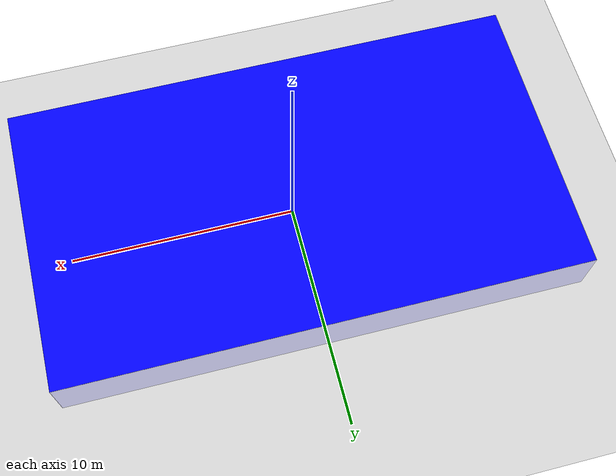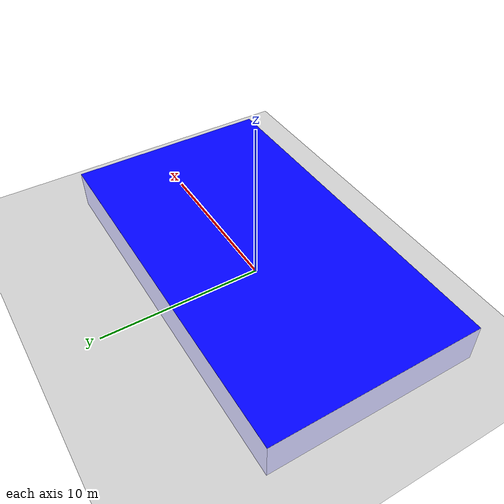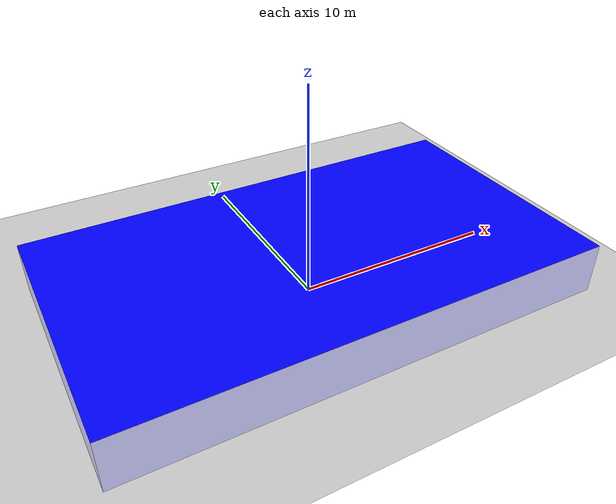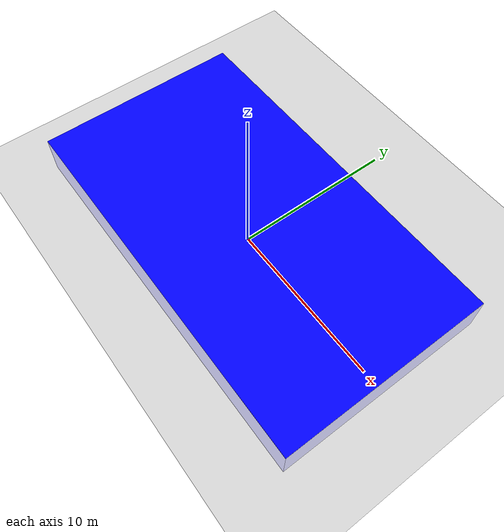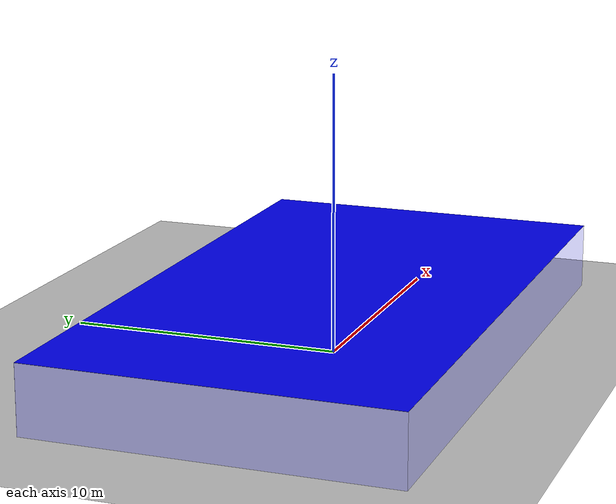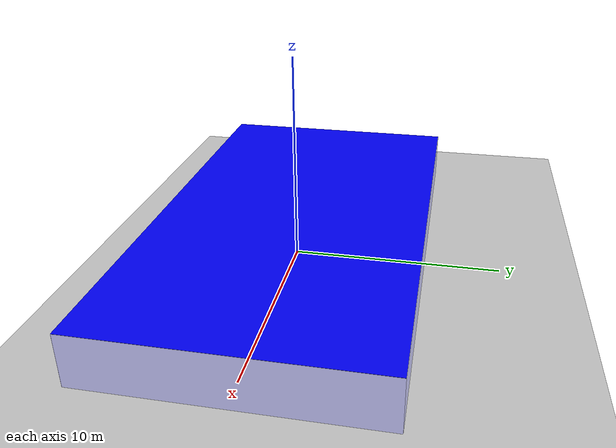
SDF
<?xml version="1.0" ?>
<sdf version="1.5">
  <world name="default">
    <gui>
      <camera name="user_camera">
        <pose>10 11 3 0 0 -2.356</pose>
      </camera>
    </gui>

    <scene>
      <ambient> 0.25 0.3 0.5 1</ambient>
      <grid>false</grid>
    </scene>

    <light type="directional" name="sun">
      <cast_shadows>true</cast_shadows>
      <pose>0 0 100 0 0 0</pose>
      <diffuse>0.8 0.8 0.8 1</diffuse>
      <specular>0.2 0.2 0.2 1</specular>
      <attenuation>
        <range>1000</range>
        <constant>0.9</constant>
        <linear>0.01</linear>
        <quadratic>0.001</quadratic>
      </attenuation>
      <direction>-0.5 0.1 -0.9</direction>
    </light>

    <model name="ground_plane">
      <static>true</static>
      <link name="link">
        <collision name="collision">
          <geometry>
            <plane>
              <normal>0 0 1</normal>
              <size>22.86 12.8</size>
            </plane>
          </geometry>
          <surface>
            <contact>
              <collide_bitmask>0xffff</collide_bitmask>
            </contact>
            <friction>
              <ode>
                <mu>100</mu>
                <mu2>50</mu2>
              </ode>
            </friction>
          </surface>
        </collision>
        <visual name="visual">
          <cast_shadows>false</cast_shadows>
          <geometry>
            <plane>
              <normal>0 0 1</normal>
              <size>22.86 12.8</size>
            </plane>
          </geometry>
          <material>
            <script>
              <uri>file://media/materials/scripts/gazebo.material</uri>
              <name>Gazebo/Grey</name>
            </script>
          </material>
        </visual>
      </link>
    </model>

    <model name="ceiling_plane">
      <static>true</static>
      <pose>0 0 2.44 0 0 0</pose>
      <link name="link">
        <collision name="collision">
          <geometry>
            <box>
              <size>22.86 12.8 .01</size>
            </box>
          </geometry>
        </collision>
        <visual name="visual">
          <cast_shadows>false</cast_shadows>
          <geometry>
            <box>
              <size>22.86 12.8 .01</size>
            </box>
          </geometry>
          <material>
            <ambient> 0 0 1 0.0 </ambient>
            <diffuse> 0 0 1 0.0 </diffuse>
          </material>
        </visual>

        <visual name="visual_sideA">
          <pose>11.43 0 -1.22 0 0 0</pose>
          <cast_shadows>false</cast_shadows>
          <geometry>
            <box>
              <size>0.01 12.8 2.44</size>
            </box>
          </geometry>
          <material>
            <ambient> 0 0 1 0.2 </ambient>
            <diffuse> 0 0 1 0.2 </diffuse>
          </material>
        </visual>

        <visual name="visual_sideB">
          <pose>-11.43 0 -1.22 0 0 0</pose>
          <cast_shadows>false</cast_shadows>
          <geometry>
            <box>
              <size>0.01 12.8 2.44</size>
            </box>
          </geometry>
          <material>
            <ambient> 0 0 1 0.2 </ambient>
            <diffuse> 0 0 1 0.2 </diffuse>
          </material>
        </visual>

        <visual name="visual_sideC">
          <pose>0 6.4 -1.22 0 0 0</pose>
          <cast_shadows>false</cast_shadows>
          <geometry>
            <box>
              <size>22.86 0.01 2.44</size>
            </box>
          </geometry>
          <material>
            <ambient> 0 0 1 0.2 </ambient>
            <diffuse> 0 0 1 0.2 </diffuse>
          </material>
        </visual>

        <visual name="visual_sideD">
          <pose>0 -6.4 -1.22 0 0 0</pose>
          <cast_shadows>false</cast_shadows>
          <geometry>
            <box>
              <size>22.86 0.01 2.44</size>
            </box>
          </geometry>
          <material>
            <ambient> 0 0 1 0.2 </ambient>
            <diffuse> 0 0 1 0.2 </diffuse>
          </material>
        </visual>

      </link>
    </model>

  </world>
</sdf>
